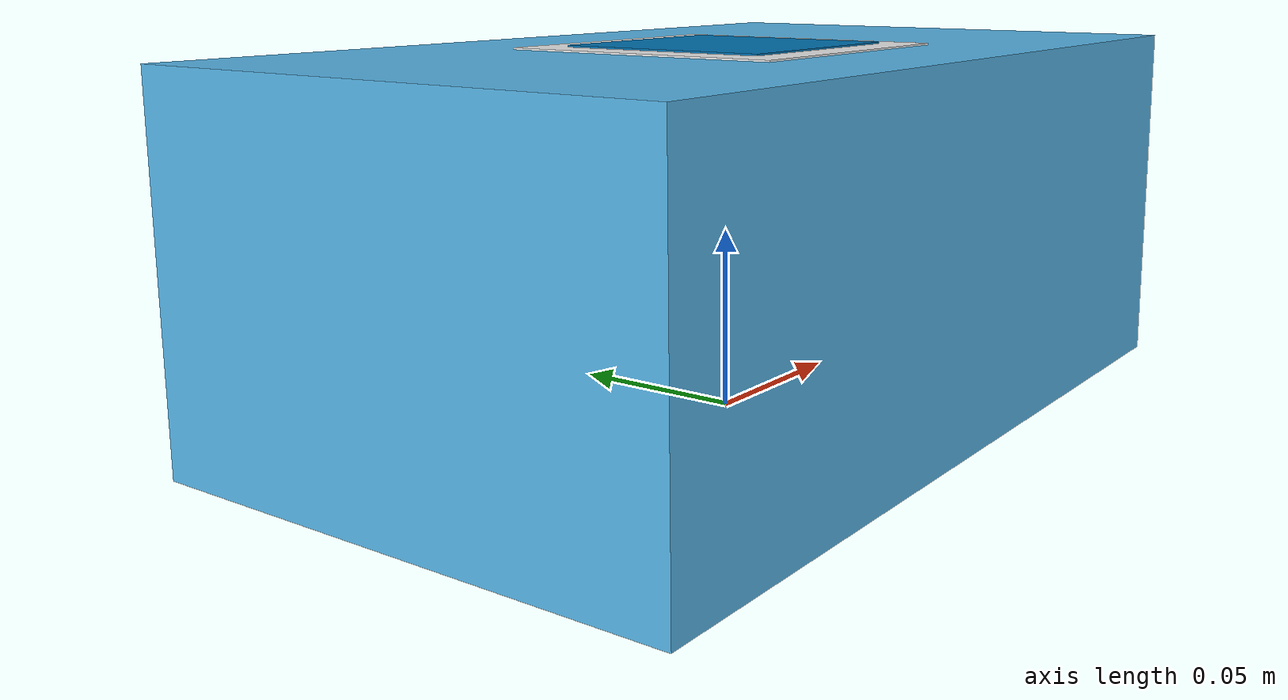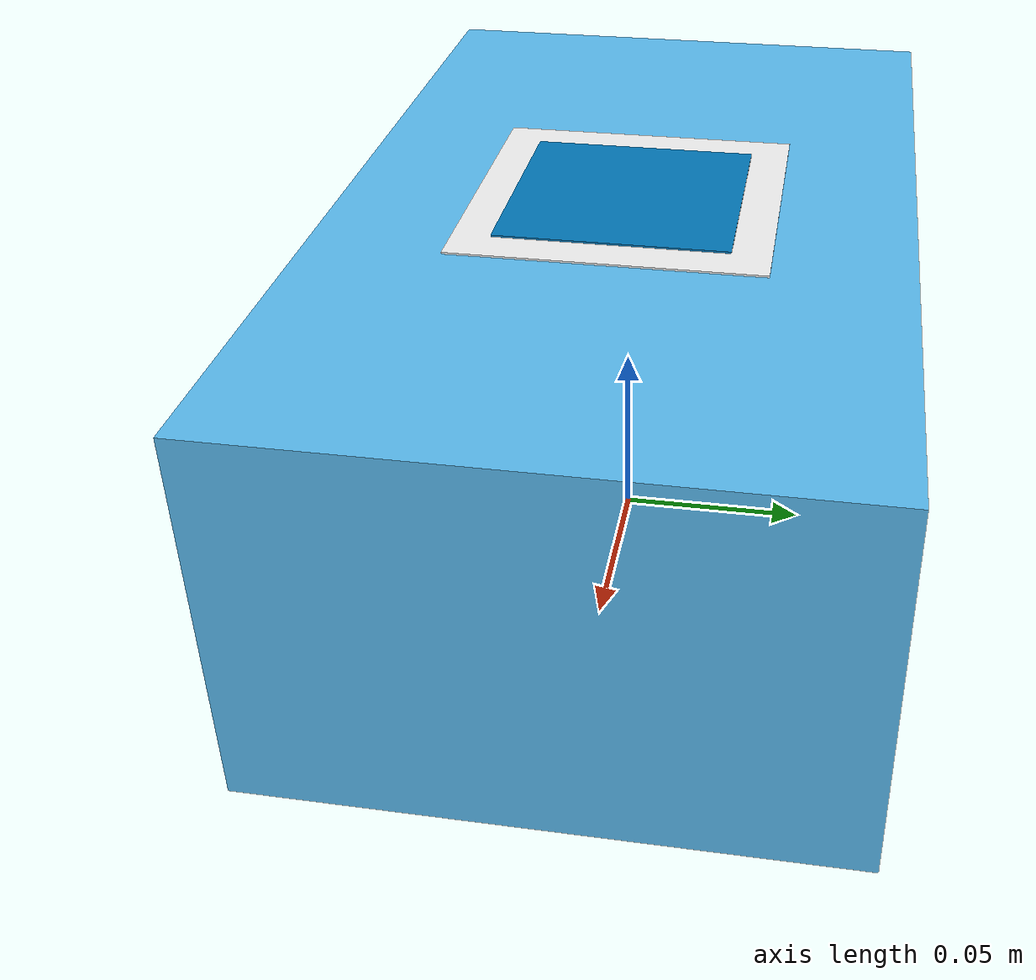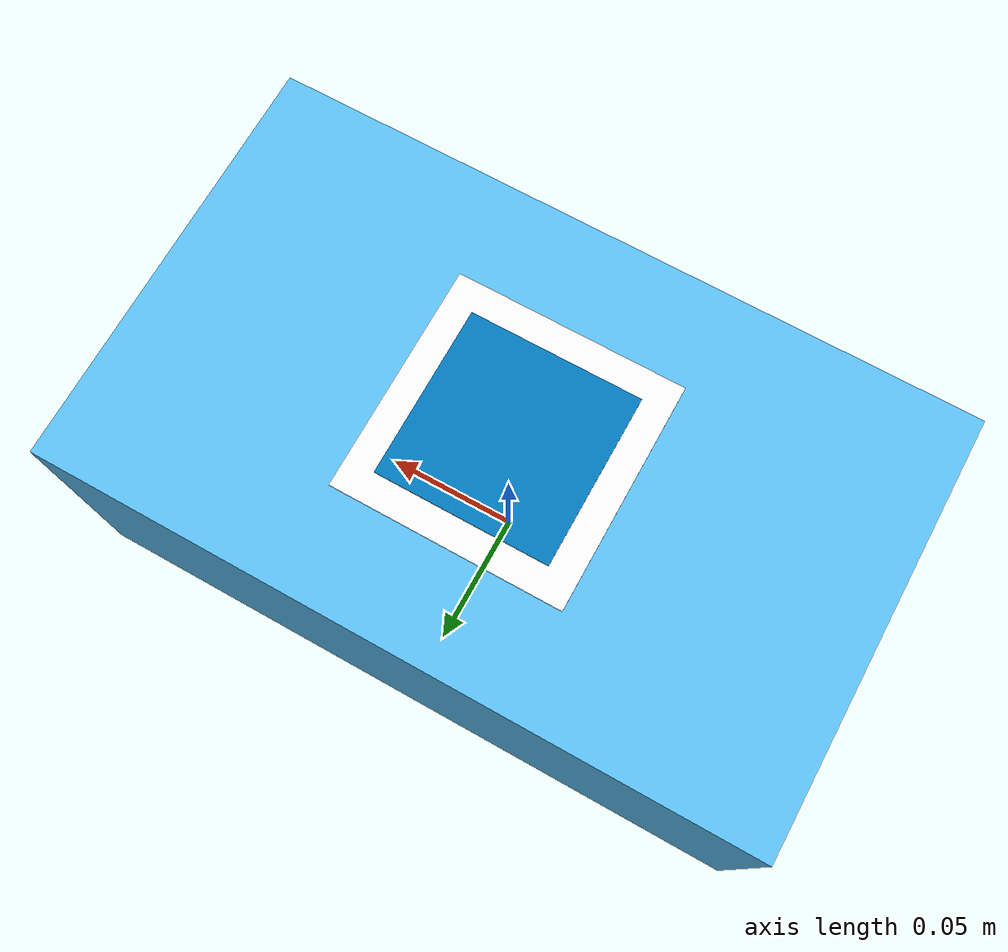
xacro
<?xml version="1.0" ?>
<robot name="box" xmlns:xacro="http://wiki.ros.org/xacro">

  <xacro:include filename="$(find component_sorting_description)/urdf/inertia.urdf.xacro" />
  <xacro:include filename="$(find component_sorting_description)/ar_tags/ar_tag_6cm_border.urdf.xacro" />

  <xacro:arg name="prefix" default="box_"/>
  <xacro:property name="prefix" value="$(arg prefix)" />

  <xacro:arg name="tag_id" default="1"/>
  <xacro:property name="tag_id" value="$(arg tag_id)" />

  <link name="${prefix}base_link">
  </link>

  <joint name="${prefix}joint" type="fixed">
    <origin rpy="0 0 -1.5708" xyz="0 0 0"/>
    <parent link="${prefix}base_link"/>
    <child link="${prefix}body_box_link"/>
  </joint>

  <link name="${prefix}body_box_link">
    <inertial>
      <mass value="4" />
      <origin xyz="0 0 0.05" />
      <solid_cuboid_inertia m="4" h="0.2" d="0.1" w="0.3"/>
    </inertial>
    <visual>
      <origin rpy="0 0 0" xyz="0 0 0.05"/>
      <geometry>
        <box size="0.15 0.25 0.10" />
      </geometry>
    </visual>
    <collision>
      <origin rpy="0 0 0" xyz="0 0 0.05"/>
      <geometry>
        <box size="0.15 0.25 0.10" />
      </geometry>
<surface>
      <friction>
        <ode>
          <mu>1</mu>
          <mu2>1</mu2>
          <slip1>0</slip1>
          <slip2>0</slip2>
        </ode>
      </friction>
      <contact>
        <ode>
          <soft_cfm>0</soft_cfm>
          <soft_erp>0.2</soft_erp>
          <kp>1e+13</kp>
          <kd>1</kd>
          <max_vel>0.01</max_vel>
          <min_depth>0</min_depth>
        </ode>
      </contact>
    </surface>
    </collision>
  </link>

  <joint name="${prefix}qr_joint" type="fixed">
    <origin rpy="0 0 0" xyz="0 0 0.05"/>
    <parent link="${prefix}body_box_link"/>
    <child link="${prefix}qr"/>
  </joint>

  <link name="${prefix}qr"/>

  <!-- AR TAG -->
  <xacro:ar_tag prefix="${prefix}" parent="${prefix}qr" tag_id="${tag_id}">
    <origin xyz="0 0 0.05" rpy="0 0 0"/>
  </xacro:ar_tag>

  <gazebo reference="${prefix}body_box_link">
    <visual>
      <material>
        <ambient>0.0 0.0 0.0 1.0</ambient>
        <diffuse>0.2 0.2 0.2 1.0</diffuse>
        <specular>0.584313725 0.647058824 0.650980392 1.0</specular>
        <emissive>0.0 0.0 0.0 0.0</emissive>
      </material>
    </visual>
    <mu1>1.0</mu1>
    <mu2>1.0</mu2>
    <kp>10000000.0</kp>
    <kd>1.0</kd>
   <minDepth>0.001</minDepth>
   <maxVel>0</maxVel>
    <maxContacts>10</maxContacts>
 </gazebo>

</robot>

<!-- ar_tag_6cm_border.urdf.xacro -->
<robot name="ar_tag" xmlns:xacro="http://wiki.ros.org/xacro">

  <xacro:macro name="ar_tag" params="prefix parent tag_id *origin">

    <joint name="${prefix}ar_tag_base_joint" type="fixed">
      <xacro:insert_block name="origin" />
      <parent link="${parent}"/>
      <child link="${prefix}ar_tag_base_link"/>
    </joint>

    <link name="${prefix}ar_tag_base_link">
      <inertial>
        <mass value="0.00001"/>
        <origin rpy="0  0  0" xyz="0  0  0"/>
        <inertia ixx="0.00000001" ixy="0.0"  ixz="0.0"  iyy="0.00000001"  iyz="0.0"  izz="0.00000001"/>
      </inertial>
      <visual >
        <origin rpy="0  0  0" xyz="0  0  0"/>
        <geometry>
          <box size="0.08 0.08 0.001"/>
        </geometry>
      </visual>
    </link>

    <joint name="${prefix}ar_tag_joint" type="fixed">
      <origin rpy="0 0 ${+3.14159/2}" xyz="0 0 0.0005"/>
      <parent link="${prefix}ar_tag_base_link"/>
      <child link="${prefix}ar_tag_link"/>
    </joint>

    <link name="${prefix}ar_tag_link">
      <inertial>
        <mass value="0.00001"/>
        <origin rpy="0  0  0" xyz="0  0  0"/>
        <inertia ixx="0.00000001" ixy="0.0"  ixz="0.0"  iyy="0.00000001"  iyz="0.0"  izz="0.00000001"/>
      </inertial>
      <visual >
        <origin rpy="0  0  0" xyz="0  0  0"/>
        <geometry>
          <box size="0.06 0.06 0.001"/>
        </geometry>
      </visual>
    </link>

    <gazebo reference="${prefix}ar_tag_base_link">

      <material>Gazebo/White</material>

    </gazebo>

    <gazebo reference="${prefix}ar_tag_link">

      <material>ARtrack/${tag_id}</material>

    </gazebo>

  </xacro:macro>
</robot>
